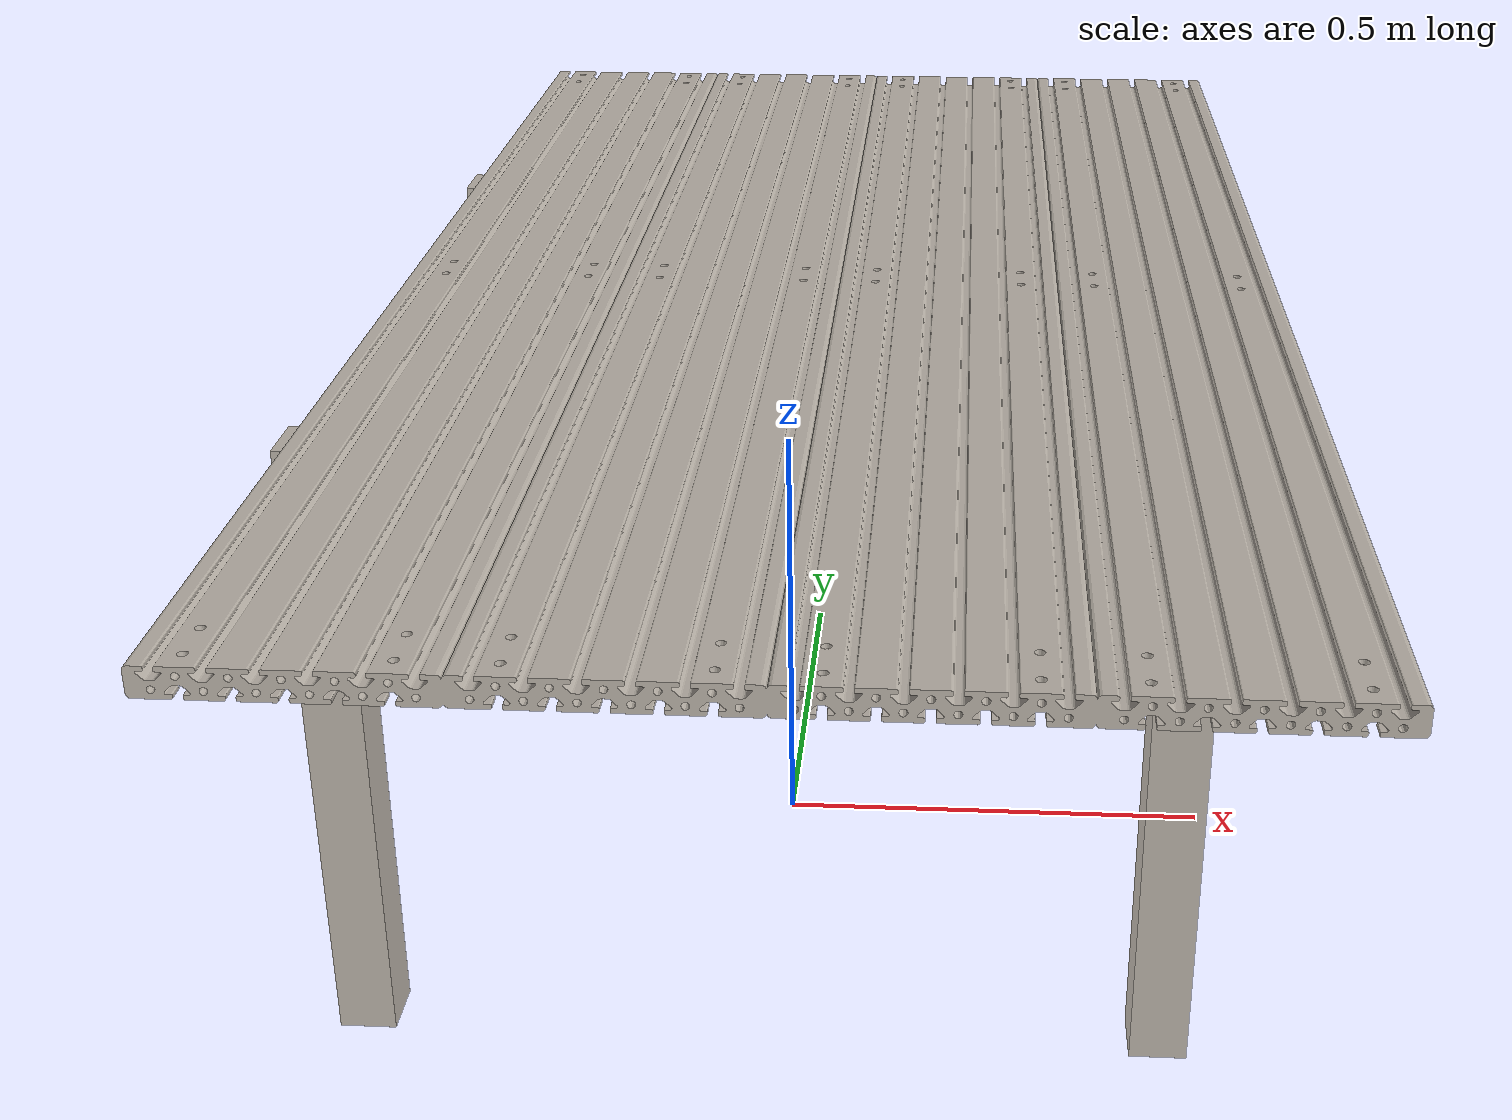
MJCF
<mujoco model="manipulation_table">
  <compiler angle="radian" autolimits="true" meshdir="assets" texturedir="assets"/>

  <asset>
    <mesh name="table_plate" file="table_plate.stl" scale="0.001 0.001 0.001"/>

    <texture name="metal_tex" type="2d" file="metal_material.png"/>
    <material name="plate_mat"
              texture="metal_tex"
              texrepeat="4 4"
              texuniform="false"
              specular="0.9"
              shininess="0.4"
              reflectance="0.3"/>
    <material name="leg_mat"
              texture="metal_tex"
              texrepeat="1 2"
              texuniform="false"
              specular="0.9"
              shininess="0.4"
              reflectance="0.3"/>
  </asset>

  <default>
    <default class="table">
      <geom condim="6"/>
    </default>
  </default>

  <worldbody>
    <body name="table" pos="0 0 0">

      <!-- 28mm thick plate -->
      <geom name="table_surface" class="table" type="mesh" mesh="table_plate"
            material="plate_mat"
            pos="-0.42 0 0.674"
            euler="1.5708 0 0"
            friction="1.2 0.005 0.0001"
            solimp="0.99 0.99 0.001" solref="0.001 1"/>

      <geom name="leg_front_right" class="table" material="leg_mat"
            type="box" size="0.03 0.03 0.337" pos="0.42 0.42 0.337"
            friction="0.9 0.005 0.0001"/>
      <geom name="leg_front_left"  class="table" material="leg_mat"
            type="box" size="0.03 0.03 0.337" pos="-0.42 0.42 0.337"
            friction="0.9 0.005 0.0001"/>
      <geom name="leg_back_right"  class="table" material="leg_mat"
            type="box" size="0.03 0.03 0.337" pos="0.42 -0.42 0.337"
            friction="0.9 0.005 0.0001"/>
      <geom name="leg_back_left"   class="table" material="leg_mat"
            type="box" size="0.03 0.03 0.337" pos="-0.42 -0.42 0.337"
            friction="0.9 0.005 0.0001"/>
    </body>
  </worldbody>
</mujoco>
